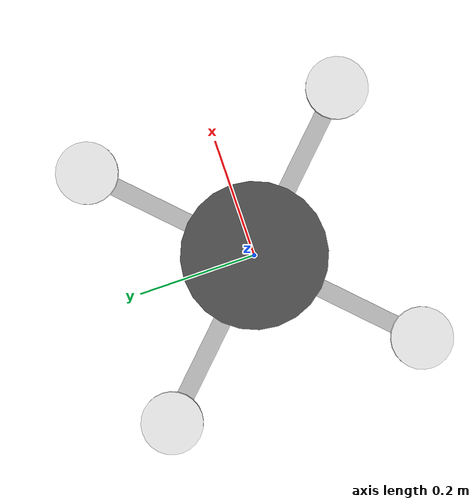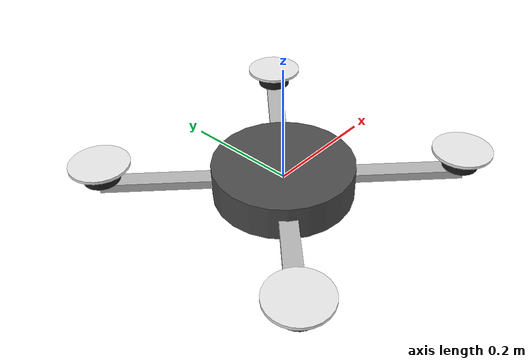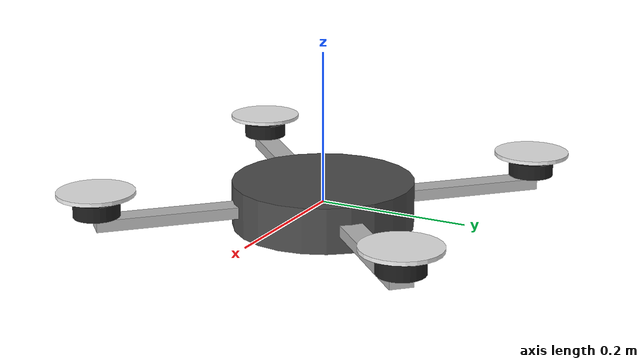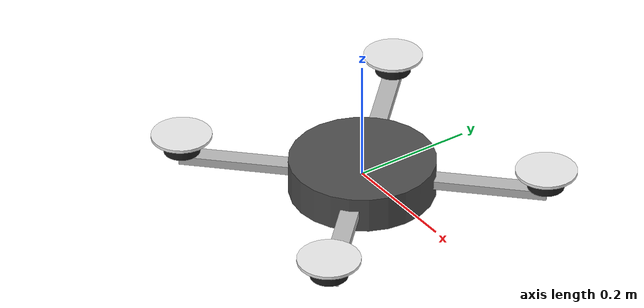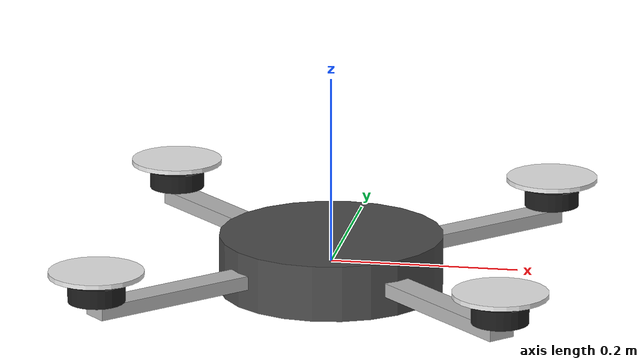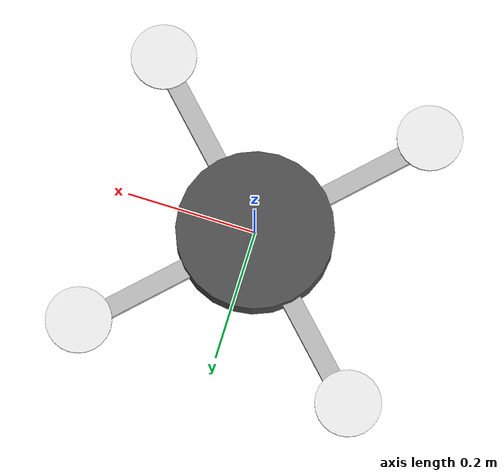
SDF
<?xml version="1.0"?>
<sdf version="1.6">
  <model name="falcon_cam_uav">
    <static>false</static>

    <link name="base_link">
      <pose>0 0 0 0 0 0</pose>

      <visual name="base_vis">
              <geometry><cylinder><radius>0.12</radius><length>0.06</length></cylinder></geometry>
              <material><script><name>Gazebo/DarkGrey</name></script></material>
            </visual>

            <visual name="arms_vis">
              <geometry><box><size>0.6 0.03 0.015</size></box></geometry>
              <pose>0 0 0 0 0 0.785</pose>
            </visual>
            <visual name="arms_vis_2">
              <geometry><box><size>0.6 0.03 0.015</size></box></geometry>
              <pose>0 0 0 0 0 -0.785</pose>
            </visual>

            <visual name="motor_1"><pose>0.21 0.21 0.02 0 0 0</pose>
              <geometry><cylinder><radius>0.03</radius><length>0.02</length></cylinder></geometry>
              <material><script><name>Gazebo/Black</name></script></material>
            </visual>
            <visual name="motor_2"><pose>-0.21 0.21 0.02 0 0 0</pose>
              <geometry><cylinder><radius>0.03</radius><length>0.02</length></cylinder></geometry>
              <material><script><name>Gazebo/Black</name></script></material>
            </visual>
            <visual name="motor_3"><pose>0.21 -0.21 0.02 0 0 0</pose>
              <geometry><cylinder><radius>0.03</radius><length>0.02</length></cylinder></geometry>
              <material><script><name>Gazebo/Black</name></script></material>
            </visual>
            <visual name="motor_4"><pose>-0.21 -0.21 0.02 0 0 0</pose>
              <geometry><cylinder><radius>0.03</radius><length>0.02</length></cylinder></geometry>
              <material><script><name>Gazebo/Black</name></script></material>
            </visual>

            <visual name="prop_1"><pose>0.21 0.21 0.04 0 0 0</pose>
              <geometry><cylinder><radius>0.05</radius><length>0.005</length></cylinder></geometry>
              <material><script><name>Gazebo/White</name></script></material> </visual>
            <visual name="prop_2"><pose>-0.21 0.21 0.04 0 0 0</pose>
              <geometry><cylinder><radius>0.05</radius><length>0.005</length></cylinder></geometry>
              <material><script><name>Gazebo/White</name></script></material>
            </visual>
            <visual name="prop_3"><pose>0.21 -0.21 0.04 0 0 0</pose>
              <geometry><cylinder><radius>0.05</radius><length>0.005</length></cylinder></geometry>
              <material><script><name>Gazebo/White</name></script></material>
            </visual>
            <visual name="prop_4"><pose>-0.21 -0.21 0.04 0 0 0</pose>
              <geometry><cylinder><radius>0.05</radius><length>0.005</length></cylinder></geometry>
              <material><script><name>Gazebo/White</name></script></material>
            </visual>

      <!-- Camera sensor -->
      <sensor name="rgb_camera" type="camera">
        <always_on>true</always_on>
        <update_rate>15</update_rate>
        <camera>
          <horizontal_fov>1.047</horizontal_fov>
          <image>
            <width>640</width>
            <height>480</height>
            <format>R8G8B8</format>
          </image>
          <clip>
            <near>0.05</near>
            <far>50</far>
          </clip>
        </camera>

        <!-- ROS bridge plugin -->
        <plugin name="gazebo_ros_camera" filename="libgazebo_ros_camera.so">
          <cameraName>camera</cameraName>
          <frameName>camera_link</frameName>
          <imageTopicName>image_raw</imageTopicName>
          <cameraInfoTopicName>camera_info</cameraInfoTopicName>
        </plugin>
      </sensor>

    </link>
  </model>
</sdf>
